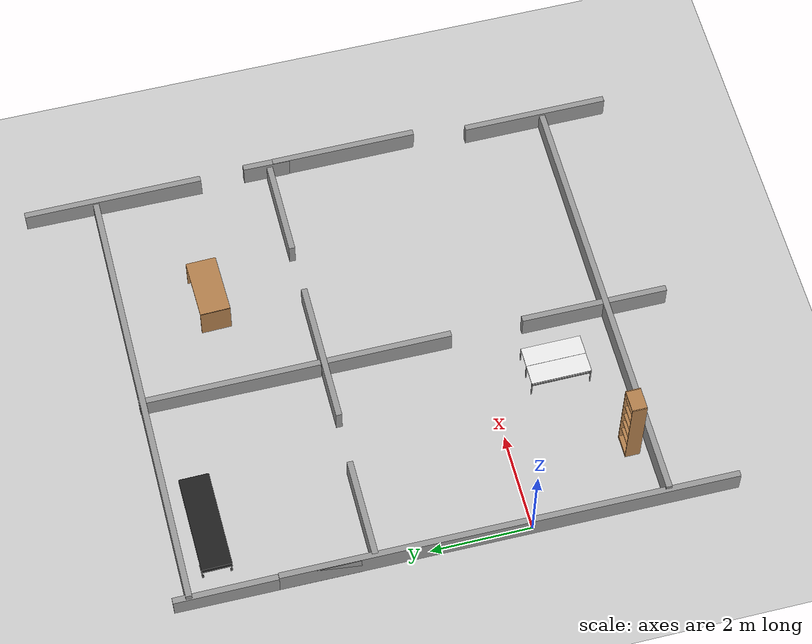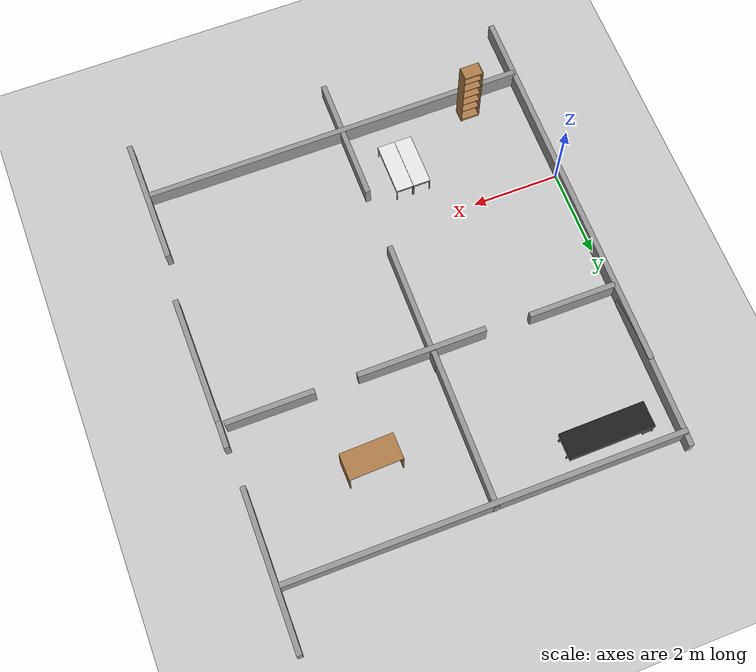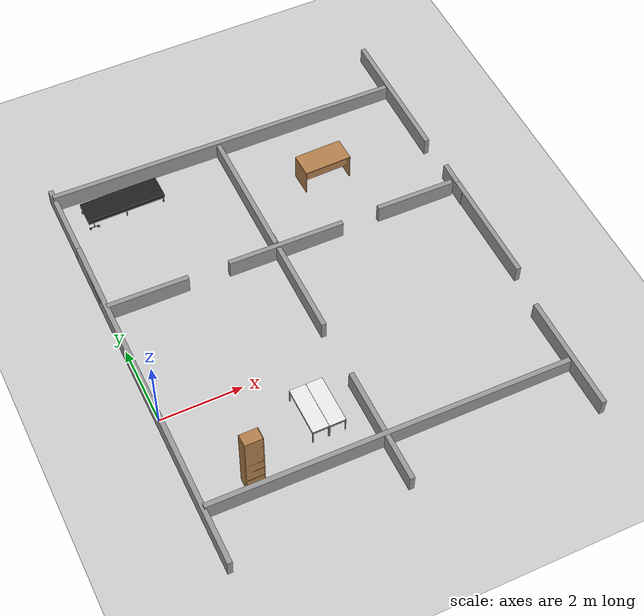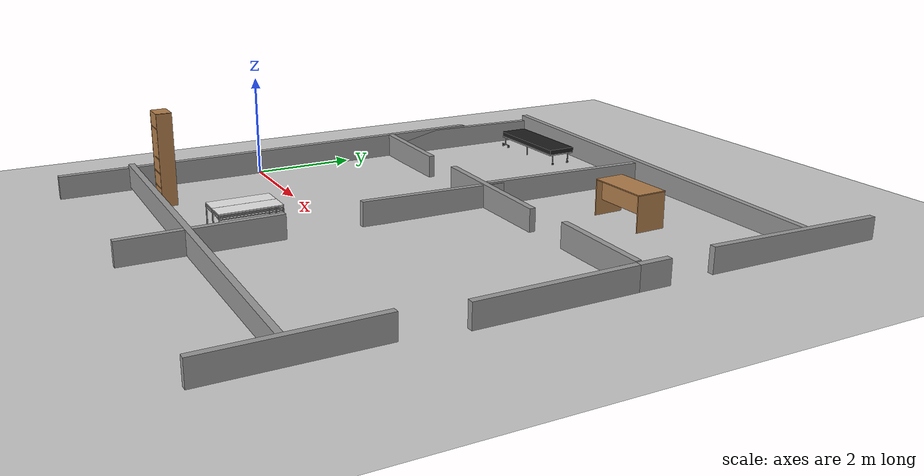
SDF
<sdf version="1.7">
 <world name="default">
  <light name="sun" type="directional">
   <pose>0 0 10 0 -0 0</pose>
   <diffuse>0.8 0.8 0.8 1</diffuse>
   <specular>0.2 0.2 0.2 1</specular>
   <attenuation>
    <range>1000</range>
    <constant>0.9</constant>
    <linear>0.01</linear>
    <quadratic>0.001</quadratic>
   </attenuation>
   <direction>-0.5 0.1 -0.9</direction>
   <spot><inner_angle>0</inner_angle><outer_angle>0</outer_angle><falloff>0</falloff></spot>
  </light>
  <model name="ground_plane">
   <static>1</static>
   <link name="link">
    <collision name="collision">
     <geometry><plane><normal>0 0 1</normal><size>100 100</size></plane></geometry>
     <surface><friction><ode><mu>100</mu><mu2>50</mu2></ode></friction></surface>
    </collision>
    <visual name="visual">
     <cast_shadows>0</cast_shadows>
     <geometry><plane><normal>0 0 1</normal><size>100 100</size></plane></geometry>
     <material>
      <script><uri>file://media/materials/scripts/gazebo.material</uri><name>Gazebo/Grey</name></script>
     </material>
    </visual>
   </link>
  </model>
  <gravity>0 0 -9.8</gravity>
  <physics type="ode">
   <max_step_size>0.001</max_step_size>
   <real_time_factor>1</real_time_factor>
   <real_time_update_rate>1000</real_time_update_rate>
  </physics>
  <scene><ambient>0.4 0.4 0.4 1</ambient><background>0.7 0.7 0.7 1</background><shadows>1</shadows></scene>
  <spherical_coordinates>
   <surface_model>EARTH_WGS84</surface_model>
   <latitude_deg>0</latitude_deg>
   <longitude_deg>0</longitude_deg>
   <elevation>0</elevation>
   <heading_deg>0</heading_deg>
  </spherical_coordinates>
  <model name="wall">
   <link name="link">
    <inertial>
     <mass>1</mass>
     <inertia>
      <ixx>0.166667</ixx>
      <ixy>0</ixy>
      <ixz>0</ixz>
      <iyy>0.166667</iyy>
      <iyz>0</iyz>
      <izz>0.166667</izz>
     </inertia>
    </inertial>
    <visual name="visual">
     <geometry><box><size>0.120264 8.94791 0.469751</size></box></geometry>
     <material>
      <script><name>Gazebo/Grey</name><uri>file://media/materials/scripts/gazebo.material</uri></script>
      <shader type="pixel"/>
     </material>
    </visual>
    <collision name="collision">
     <geometry><box><size>0.120264 8.94791 0.469751</size></box></geometry>
     <surface>
      <friction>
       <ode><mu>1</mu><mu2>1</mu2><fdir1>0 0 0</fdir1><slip1>0</slip1><slip2>0</slip2></ode>
       <torsional>
        <coefficient>1</coefficient>
        <patch_radius>0</patch_radius>
        <surface_radius>0</surface_radius>
        <use_patch_radius>1</use_patch_radius>
        <ode><slip>0</slip></ode>
       </torsional>
      </friction>
      <bounce><restitution_coefficient>0</restitution_coefficient><threshold>1e+06</threshold></bounce>
      <contact>
       <collide_without_contact>0</collide_without_contact>
       <collide_without_contact_bitmask>1</collide_without_contact_bitmask>
       <collide_bitmask>1</collide_bitmask>
       <ode>
        <soft_cfm>0</soft_cfm>
        <soft_erp>0.2</soft_erp>
        <kp>1e+13</kp>
        <kd>1</kd>
        <max_vel>0.01</max_vel>
        <min_depth>0</min_depth>
       </ode>
       <bullet>
        <split_impulse>1</split_impulse>
        <split_impulse_penetration_threshold>-0.01</split_impulse_penetration_threshold>
        <soft_cfm>0</soft_cfm>
        <soft_erp>0.2</soft_erp>
        <kp>1e+13</kp>
        <kd>1</kd>
       </bullet>
      </contact>
     </surface>
    </collision>
   </link>
   <static>1</static>
   <pose>-0.031703 0.436973 0.219564 0.003622 0.015237 -0.004097</pose>
  </model>
  <model name="wall_clone">
   <link name="link">
    <inertial>
     <mass>1</mass>
     <inertia>
      <ixx>0.166667</ixx>
      <ixy>0</ixy>
      <ixz>0</ixz>
      <iyy>0.166667</iyy>
      <iyz>0</iyz>
      <izz>0.166667</izz>
     </inertia>
    </inertial>
    <visual name="visual">
     <geometry><box><size>0.120264 8.94791 0.469751</size></box></geometry>
     <material>
      <script><name>Gazebo/Grey</name><uri>file://media/materials/scripts/gazebo.material</uri></script>
      <shader type="pixel"/>
     </material>
    </visual>
    <collision name="collision">
     <geometry><box><size>0.120264 8.94791 0.469751</size></box></geometry>
     <surface>
      <friction>
       <ode><mu>1</mu><mu2>1</mu2><fdir1>0 0 0</fdir1><slip1>0</slip1><slip2>0</slip2></ode>
       <torsional>
        <coefficient>1</coefficient>
        <patch_radius>0</patch_radius>
        <surface_radius>0</surface_radius>
        <use_patch_radius>1</use_patch_radius>
        <ode><slip>0</slip></ode>
       </torsional>
      </friction>
      <bounce><restitution_coefficient>0</restitution_coefficient><threshold>1e+06</threshold></bounce>
      <contact>
       <collide_without_contact>0</collide_without_contact>
       <collide_without_contact_bitmask>1</collide_without_contact_bitmask>
       <collide_bitmask>1</collide_bitmask>
       <ode>
        <soft_cfm>0</soft_cfm>
        <soft_erp>0.2</soft_erp>
        <kp>1e+13</kp>
        <kd>1</kd>
        <max_vel>0.01</max_vel>
        <min_depth>0</min_depth>
       </ode>
       <bullet>
        <split_impulse>1</split_impulse>
        <split_impulse_penetration_threshold>-0.01</split_impulse_penetration_threshold>
        <soft_cfm>0</soft_cfm>
        <soft_erp>0.2</soft_erp>
        <kp>1e+13</kp>
        <kd>1</kd>
       </bullet>
      </contact>
     </surface>
    </collision>
   </link>
   <static>1</static>
   <pose>4.4391 -2.6527 0.210699 -0.015237 0.003622 -1.57495</pose>
  </model>
  <model name="wall_clone_clone">
   <link name="link">
    <inertial>
     <mass>1</mass>
     <inertia>
      <ixx>0.166667</ixx>
      <ixy>0</ixy>
      <ixz>0</ixz>
      <iyy>0.166667</iyy>
      <iyz>0</iyz>
      <izz>0.166667</izz>
     </inertia>
    </inertial>
    <visual name="visual">
     <geometry><box><size>0.120264 8.94791 0.469751</size></box></geometry>
     <material>
      <script><name>Gazebo/Grey</name><uri>file://media/materials/scripts/gazebo.material</uri></script>
      <shader type="pixel"/>
     </material>
    </visual>
    <collision name="collision">
     <geometry><box><size>0.120264 8.94791 0.469751</size></box></geometry>
     <surface>
      <friction>
       <ode><mu>1</mu><mu2>1</mu2><fdir1>0 0 0</fdir1><slip1>0</slip1><slip2>0</slip2></ode>
       <torsional>
        <coefficient>1</coefficient>
        <patch_radius>0</patch_radius>
        <surface_radius>0</surface_radius>
        <use_patch_radius>1</use_patch_radius>
        <ode><slip>0</slip></ode>
       </torsional>
      </friction>
      <bounce><restitution_coefficient>0</restitution_coefficient><threshold>1e+06</threshold></bounce>
      <contact>
       <collide_without_contact>0</collide_without_contact>
       <collide_without_contact_bitmask>1</collide_without_contact_bitmask>
       <collide_bitmask>1</collide_bitmask>
       <ode>
        <soft_cfm>0</soft_cfm>
        <soft_erp>0.2</soft_erp>
        <kp>1e+13</kp>
        <kd>1</kd>
        <max_vel>0.01</max_vel>
        <min_depth>0</min_depth>
       </ode>
       <bullet>
        <split_impulse>1</split_impulse>
        <split_impulse_penetration_threshold>-0.01</split_impulse_penetration_threshold>
        <soft_cfm>0</soft_cfm>
        <soft_erp>0.2</soft_erp>
        <kp>1e+13</kp>
        <kd>1</kd>
       </bullet>
      </contact>
     </surface>
    </collision>
   </link>
   <static>1</static>
   <pose>4.44005 6.59473 0.212068 -0.015237 0.003622 -1.57495</pose>
  </model>
  <model name="wall_3m">
   <link name="link">
    <inertial>
     <mass>0.327712</mass>
     <inertia>
      <ixx>0.240849</ixx>
      <ixy>0</ixy>
      <ixz>0</ixz>
      <iyy>0.00642123</iyy>
      <iyz>0</iyz>
      <izz>0.235218</izz>
     </inertia>
    </inertial>
    <visual name="visual">
     <geometry><box><size>0.120264 2.93234 0.469751</size></box></geometry>
     <material>
      <script><name>Gazebo/Grey</name><uri>file://media/materials/scripts/gazebo.material</uri></script>
      <shader type="pixel"/>
     </material>
    </visual>
    <collision name="collision">
     <geometry><box><size>0.120264 2.93234 0.469751</size></box></geometry>
     <surface>
      <friction>
       <ode><mu>1</mu><mu2>1</mu2><fdir1>0 0 0</fdir1><slip1>0</slip1><slip2>0</slip2></ode>
       <torsional>
        <coefficient>1</coefficient>
        <patch_radius>0</patch_radius>
        <surface_radius>0</surface_radius>
        <use_patch_radius>1</use_patch_radius>
        <ode><slip>0</slip></ode>
       </torsional>
      </friction>
      <bounce><restitution_coefficient>0</restitution_coefficient><threshold>1e+06</threshold></bounce>
      <contact>
       <collide_without_contact>0</collide_without_contact>
       <collide_without_contact_bitmask>1</collide_without_contact_bitmask>
       <collide_bitmask>1</collide_bitmask>
       <ode>
        <soft_cfm>0</soft_cfm>
        <soft_erp>0.2</soft_erp>
        <kp>1e+13</kp>
        <kd>1</kd>
        <max_vel>0.01</max_vel>
        <min_depth>0</min_depth>
       </ode>
       <bullet>
        <split_impulse>1</split_impulse>
        <split_impulse_penetration_threshold>-0.01</split_impulse_penetration_threshold>
        <soft_cfm>0</soft_cfm>
        <soft_erp>0.2</soft_erp>
        <kp>1e+13</kp>
        <kd>1</kd>
       </bullet>
      </contact>
     </surface>
    </collision>
   </link>
   <static>1</static>
   <pose>4.46881 3.01267 0.21252 -0.015237 0.003622 -1.57495</pose>
  </model>
  <model name="wall_3m_clone">
   <link name="link">
    <inertial>
     <mass>0.327712</mass>
     <inertia>
      <ixx>0.240849</ixx>
      <ixy>0</ixy>
      <ixz>0</ixz>
      <iyy>0.00642123</iyy>
      <iyz>0</iyz>
      <izz>0.235218</izz>
     </inertia>
    </inertial>
    <visual name="visual">
     <geometry><box><size>0.120264 2.93234 0.469751</size></box></geometry>
     <material>
      <script><name>Gazebo/Grey</name><uri>file://media/materials/scripts/gazebo.material</uri></script>
      <shader type="pixel"/>
     </material>
    </visual>
    <collision name="collision">
     <geometry><box><size>0.120264 2.93234 0.469751</size></box></geometry>
     <surface>
      <friction>
       <ode><mu>1</mu><mu2>1</mu2><fdir1>0 0 0</fdir1><slip1>0</slip1><slip2>0</slip2></ode>
       <torsional>
        <coefficient>1</coefficient>
        <patch_radius>0</patch_radius>
        <surface_radius>0</surface_radius>
        <use_patch_radius>1</use_patch_radius>
        <ode><slip>0</slip></ode>
       </torsional>
      </friction>
      <bounce><restitution_coefficient>0</restitution_coefficient><threshold>1e+06</threshold></bounce>
      <contact>
       <collide_without_contact>0</collide_without_contact>
       <collide_without_contact_bitmask>1</collide_without_contact_bitmask>
       <collide_bitmask>1</collide_bitmask>
       <ode>
        <soft_cfm>0</soft_cfm>
        <soft_erp>0.2</soft_erp>
        <kp>1e+13</kp>
        <kd>1</kd>
        <max_vel>0.01</max_vel>
        <min_depth>0</min_depth>
       </ode>
       <bullet>
        <split_impulse>1</split_impulse>
        <split_impulse_penetration_threshold>-0.01</split_impulse_penetration_threshold>
        <soft_cfm>0</soft_cfm>
        <soft_erp>0.2</soft_erp>
        <kp>1e+13</kp>
        <kd>1</kd>
       </bullet>
      </contact>
     </surface>
    </collision>
   </link>
   <static>1</static>
   <pose>4.2118 -2.42123 0.212594 0.00367 0.015225 -0.000955</pose>
  </model>
  <model name="wall_3m_clone_0">
   <link name="link">
    <inertial>
     <mass>0.327712</mass>
     <inertia>
      <ixx>0.240849</ixx>
      <ixy>0</ixy>
      <ixz>0</ixz>
      <iyy>0.00642123</iyy>
      <iyz>0</iyz>
      <izz>0.235218</izz>
     </inertia>
    </inertial>
    <visual name="visual">
     <geometry><box><size>0.120264 2.93234 0.469751</size></box></geometry>
     <material>
      <script><name>Gazebo/Grey</name><uri>file://media/materials/scripts/gazebo.material</uri></script>
      <shader type="pixel"/>
     </material>
    </visual>
    <collision name="collision">
     <geometry><box><size>0.120264 2.93234 0.469751</size></box></geometry>
     <surface>
      <friction>
       <ode><mu>1</mu><mu2>1</mu2><fdir1>0 0 0</fdir1><slip1>0</slip1><slip2>0</slip2></ode>
       <torsional>
        <coefficient>1</coefficient>
        <patch_radius>0</patch_radius>
        <surface_radius>0</surface_radius>
        <use_patch_radius>1</use_patch_radius>
        <ode><slip>0</slip></ode>
       </torsional>
      </friction>
      <bounce><restitution_coefficient>0</restitution_coefficient><threshold>1e+06</threshold></bounce>
      <contact>
       <collide_without_contact>0</collide_without_contact>
       <collide_without_contact_bitmask>1</collide_without_contact_bitmask>
       <collide_bitmask>1</collide_bitmask>
       <ode>
        <soft_cfm>0</soft_cfm>
        <soft_erp>0.2</soft_erp>
        <kp>1e+13</kp>
        <kd>1</kd>
        <max_vel>0.01</max_vel>
        <min_depth>0</min_depth>
       </ode>
       <bullet>
        <split_impulse>1</split_impulse>
        <split_impulse_penetration_threshold>-0.01</split_impulse_penetration_threshold>
        <soft_cfm>0</soft_cfm>
        <soft_erp>0.2</soft_erp>
        <kp>1e+13</kp>
        <kd>1</kd>
       </bullet>
      </contact>
     </surface>
    </collision>
   </link>
   <static>1</static>
   <pose>4.2456 1.93622 0.204163 -0.015237 0.003622 -0.006735</pose>
  </model>
  <model name="wall_3m_clone_0_clone">
   <link name="link">
    <inertial>
     <mass>0.327712</mass>
     <inertia>
      <ixx>0.240849</ixx>
      <ixy>0</ixy>
      <ixz>0</ixz>
      <iyy>0.00642123</iyy>
      <iyz>0</iyz>
      <izz>0.235218</izz>
     </inertia>
    </inertial>
    <visual name="visual">
     <geometry><box><size>0.120264 3.58461 0.469751</size></box></geometry>
     <material>
      <script><name>Gazebo/Grey</name><uri>file://media/materials/scripts/gazebo.material</uri></script>
      <shader type="pixel"/>
     </material>
    </visual>
    <collision name="collision">
     <geometry><box><size>0.120264 3.58461 0.469751</size></box></geometry>
     <surface>
      <friction>
       <ode><mu>1</mu><mu2>1</mu2><fdir1>0 0 0</fdir1><slip1>0</slip1><slip2>0</slip2></ode>
       <torsional>
        <coefficient>1</coefficient>
        <patch_radius>0</patch_radius>
        <surface_radius>0</surface_radius>
        <use_patch_radius>1</use_patch_radius>
        <ode><slip>0</slip></ode>
       </torsional>
      </friction>
      <bounce><restitution_coefficient>0</restitution_coefficient><threshold>1e+06</threshold></bounce>
      <contact>
       <collide_without_contact>0</collide_without_contact>
       <collide_without_contact_bitmask>1</collide_without_contact_bitmask>
       <collide_bitmask>1</collide_bitmask>
       <ode>
        <soft_cfm>0</soft_cfm>
        <soft_erp>0.2</soft_erp>
        <kp>1e+13</kp>
        <kd>1</kd>
        <max_vel>0.01</max_vel>
        <min_depth>0</min_depth>
       </ode>
       <bullet>
        <split_impulse>1</split_impulse>
        <split_impulse_penetration_threshold>-0.01</split_impulse_penetration_threshold>
        <soft_cfm>0</soft_cfm>
        <soft_erp>0.2</soft_erp>
        <kp>1e+13</kp>
        <kd>1</kd>
       </bullet>
      </contact>
     </surface>
    </collision>
   </link>
   <static>1</static>
   <pose>4.24848 4.87586 0.189399 -0.015237 0.003622 -0.006735</pose>
  </model>
  <model name="wall_2m">
   <link name="link">
    <inertial>
     <mass>0.223772</mass>
     <inertia>
      <ixx>0.0788765</ixx>
      <ixy>0</ixy>
      <ixz>0</ixz>
      <iyy>0.00438461</iyy>
      <iyz>0</iyz>
      <izz>0.0750313</izz>
     </inertia>
    </inertial>
    <pose>0.058217 -0.377225 -0.005198 0 -0 0</pose>
    <visual name="visual">
     <geometry><box><size>0.120264 2.00229 0.469751</size></box></geometry>
     <material>
      <script><name>Gazebo/Grey</name><uri>file://media/materials/scripts/gazebo.material</uri></script>
      <shader type="pixel"/>
     </material>
    </visual>
    <collision name="collision">
     <geometry><box><size>0.120264 2.00229 0.469751</size></box></geometry>
     <surface>
      <friction>
       <ode><mu>1</mu><mu2>1</mu2><fdir1>0 0 0</fdir1><slip1>0</slip1><slip2>0</slip2></ode>
       <torsional>
        <coefficient>1</coefficient>
        <patch_radius>0</patch_radius>
        <surface_radius>0</surface_radius>
        <use_patch_radius>1</use_patch_radius>
        <ode><slip>0</slip></ode>
       </torsional>
      </friction>
      <bounce><restitution_coefficient>0</restitution_coefficient><threshold>1e+06</threshold></bounce>
      <contact>
       <collide_without_contact>0</collide_without_contact>
       <collide_without_contact_bitmask>1</collide_without_contact_bitmask>
       <collide_bitmask>1</collide_bitmask>
       <ode>
        <soft_cfm>0</soft_cfm>
        <soft_erp>0.2</soft_erp>
        <kp>1e+13</kp>
        <kd>1</kd>
        <max_vel>0.01</max_vel>
        <min_depth>0</min_depth>
       </ode>
       <bullet>
        <split_impulse>1</split_impulse>
        <split_impulse_penetration_threshold>-0.01</split_impulse_penetration_threshold>
        <soft_cfm>0</soft_cfm>
        <soft_erp>0.2</soft_erp>
        <kp>1e+13</kp>
        <kd>1</kd>
       </bullet>
      </contact>
     </surface>
    </collision>
   </link>
   <static>1</static>
   <pose>1.37337 3.11952 0.214254 -0.015237 0.003622 -1.57495</pose>
  </model>
  <model name="wall_2m_clone">
   <link name="link">
    <inertial>
     <mass>0.223772</mass>
     <inertia>
      <ixx>0.0788765</ixx>
      <ixy>0</ixy>
      <ixz>0</ixz>
      <iyy>0.00438461</iyy>
      <iyz>0</iyz>
      <izz>0.0750313</izz>
     </inertia>
    </inertial>
    <pose>0.058217 -0.377225 -0.005198 0 -0 0</pose>
    <visual name="visual">
     <geometry><box><size>0.120264 2.00229 0.469751</size></box></geometry>
     <material>
      <script><name>Gazebo/Grey</name><uri>file://media/materials/scripts/gazebo.material</uri></script>
      <shader type="pixel"/>
     </material>
    </visual>
    <collision name="collision">
     <geometry><box><size>0.120264 2.00229 0.469751</size></box></geometry>
     <surface>
      <friction>
       <ode><mu>1</mu><mu2>1</mu2><fdir1>0 0 0</fdir1><slip1>0</slip1><slip2>0</slip2></ode>
       <torsional>
        <coefficient>1</coefficient>
        <patch_radius>0</patch_radius>
        <surface_radius>0</surface_radius>
        <use_patch_radius>1</use_patch_radius>
        <ode><slip>0</slip></ode>
       </torsional>
      </friction>
      <bounce><restitution_coefficient>0</restitution_coefficient><threshold>1e+06</threshold></bounce>
      <contact>
       <collide_without_contact>0</collide_without_contact>
       <collide_without_contact_bitmask>1</collide_without_contact_bitmask>
       <collide_bitmask>1</collide_bitmask>
       <ode>
        <soft_cfm>0</soft_cfm>
        <soft_erp>0.2</soft_erp>
        <kp>1e+13</kp>
        <kd>1</kd>
        <max_vel>0.01</max_vel>
        <min_depth>0</min_depth>
       </ode>
       <bullet>
        <split_impulse>1</split_impulse>
        <split_impulse_penetration_threshold>-0.01</split_impulse_penetration_threshold>
        <soft_cfm>0</soft_cfm>
        <soft_erp>0.2</soft_erp>
        <kp>1e+13</kp>
        <kd>1</kd>
       </bullet>
      </contact>
     </surface>
    </collision>
   </link>
   <static>1</static>
   <pose>8.26649 3.07325 0.211916 -0.015237 0.003622 -1.57495</pose>
  </model>
  <model name="wall_3m_clone_1">
   <link name="link">
    <inertial>
     <mass>0.327712</mass>
     <inertia>
      <ixx>0.240849</ixx>
      <ixy>0</ixy>
      <ixz>0</ixz>
      <iyy>0.00642123</iyy>
      <iyz>0</iyz>
      <izz>0.235218</izz>
     </inertia>
    </inertial>
    <visual name="visual">
     <geometry><box><size>0.120264 2.93234 0.469751</size></box></geometry>
     <material>
      <script><name>Gazebo/Grey</name><uri>file://media/materials/scripts/gazebo.material</uri></script>
      <shader type="pixel"/>
     </material>
    </visual>
    <collision name="collision">
     <geometry><box><size>0.120264 2.93234 0.469751</size></box></geometry>
     <surface>
      <friction>
       <ode><mu>1</mu><mu2>1</mu2><fdir1>0 0 0</fdir1><slip1>0</slip1><slip2>0</slip2></ode>
       <torsional>
        <coefficient>1</coefficient>
        <patch_radius>0</patch_radius>
        <surface_radius>0</surface_radius>
        <use_patch_radius>1</use_patch_radius>
        <ode><slip>0</slip></ode>
       </torsional>
      </friction>
      <bounce><restitution_coefficient>0</restitution_coefficient><threshold>1e+06</threshold></bounce>
      <contact>
       <collide_without_contact>0</collide_without_contact>
       <collide_without_contact_bitmask>1</collide_without_contact_bitmask>
       <collide_bitmask>1</collide_bitmask>
       <ode>
        <soft_cfm>0</soft_cfm>
        <soft_erp>0.2</soft_erp>
        <kp>1e+13</kp>
        <kd>1</kd>
        <max_vel>0.01</max_vel>
        <min_depth>0</min_depth>
       </ode>
       <bullet>
        <split_impulse>1</split_impulse>
        <split_impulse_penetration_threshold>-0.01</split_impulse_penetration_threshold>
        <soft_cfm>0</soft_cfm>
        <soft_erp>0.2</soft_erp>
        <kp>1e+13</kp>
        <kd>1</kd>
       </bullet>
      </contact>
     </surface>
    </collision>
   </link>
   <static>1</static>
   <pose>8.85891 -2.52434 0.196172 -0.003765 -0.015202 -3.13632</pose>
  </model>
  <model name="wall_3m_clone_1_clone">
   <link name="link">
    <inertial>
     <mass>0.327712</mass>
     <inertia>
      <ixx>0.240849</ixx>
      <ixy>0</ixy>
      <ixz>0</ixz>
      <iyy>0.00642123</iyy>
      <iyz>0</iyz>
      <izz>0.235218</izz>
     </inertia>
    </inertial>
    <visual name="visual">
     <geometry><box><size>0.120264 2.93234 0.469751</size></box></geometry>
     <material>
      <script><name>Gazebo/Grey</name><uri>file://media/materials/scripts/gazebo.material</uri></script>
      <shader type="pixel"/>
     </material>
    </visual>
    <collision name="collision">
     <geometry><box><size>0.120264 2.93234 0.469751</size></box></geometry>
     <surface>
      <friction>
       <ode><mu>1</mu><mu2>1</mu2><fdir1>0 0 0</fdir1><slip1>0</slip1><slip2>0</slip2></ode>
       <torsional>
        <coefficient>1</coefficient>
        <patch_radius>0</patch_radius>
        <surface_radius>0</surface_radius>
        <use_patch_radius>1</use_patch_radius>
        <ode><slip>0</slip></ode>
       </torsional>
      </friction>
      <bounce><restitution_coefficient>0</restitution_coefficient><threshold>1e+06</threshold></bounce>
      <contact>
       <collide_without_contact>0</collide_without_contact>
       <collide_without_contact_bitmask>1</collide_without_contact_bitmask>
       <collide_bitmask>1</collide_bitmask>
       <ode>
        <soft_cfm>0</soft_cfm>
        <soft_erp>0.2</soft_erp>
        <kp>1e+13</kp>
        <kd>1</kd>
        <max_vel>0.01</max_vel>
        <min_depth>0</min_depth>
       </ode>
       <bullet>
        <split_impulse>1</split_impulse>
        <split_impulse_penetration_threshold>-0.01</split_impulse_penetration_threshold>
        <soft_cfm>0</soft_cfm>
        <soft_erp>0.2</soft_erp>
        <kp>1e+13</kp>
        <kd>1</kd>
       </bullet>
      </contact>
     </surface>
    </collision>
   </link>
   <static>1</static>
   <pose>9.01173 1.46051 0.196172 -0.003765 -0.015202 -3.13632</pose>
  </model>
  <model name="wall_1">
   <link name="link">
    <inertial>
     <mass>0.104919</mass>
     <inertia>
      <ixx>0.00963536</ixx>
      <ixy>0</ixy>
      <ixz>0</ixz>
      <iyy>0.0020558</iyy>
      <iyz>0</iyz>
      <izz>0.00783247</izz>
     </inertia>
    </inertial>
    <pose>0.064305 -0.884421 -0.004848 0 -0 0</pose>
    <visual name="visual">
     <geometry><box><size>0.120264 0.93881 0.469751</size></box></geometry>
     <material>
      <script><name>Gazebo/Grey</name><uri>file://media/materials/scripts/gazebo.material</uri></script>
      <shader type="pixel"/>
     </material>
    </visual>
    <collision name="collision">
     <geometry><box><size>0.120264 0.93881 0.469751</size></box></geometry>
     <surface>
      <friction>
       <ode><mu>1</mu><mu2>1</mu2><fdir1>0 0 0</fdir1><slip1>0</slip1><slip2>0</slip2></ode>
       <torsional>
        <coefficient>1</coefficient>
        <patch_radius>0</patch_radius>
        <surface_radius>0</surface_radius>
        <use_patch_radius>1</use_patch_radius>
        <ode><slip>0</slip></ode>
       </torsional>
      </friction>
      <bounce><restitution_coefficient>0</restitution_coefficient><threshold>1e+06</threshold></bounce>
      <contact>
       <collide_without_contact>0</collide_without_contact>
       <collide_without_contact_bitmask>1</collide_without_contact_bitmask>
       <collide_bitmask>1</collide_bitmask>
       <ode>
        <soft_cfm>0</soft_cfm>
        <soft_erp>0.2</soft_erp>
        <kp>1e+13</kp>
        <kd>1</kd>
        <max_vel>0.01</max_vel>
        <min_depth>0</min_depth>
       </ode>
       <bullet>
        <split_impulse>1</split_impulse>
        <split_impulse_penetration_threshold>-0.01</split_impulse_penetration_threshold>
        <soft_cfm>0</soft_cfm>
        <soft_erp>0.2</soft_erp>
        <kp>1e+13</kp>
        <kd>1</kd>
       </bullet>
      </contact>
     </surface>
    </collision>
   </link>
   <static>1</static>
   <pose>8.94432 3.94613 0.209183 0.002875 0.015396 -0.007808</pose>
  </model>
  <model name="wall_3m_clone_0_clone_clone">
   <link name="link">
    <inertial>
     <mass>0.327712</mass>
     <inertia>
      <ixx>0.240849</ixx>
      <ixy>0</ixy>
      <ixz>0</ixz>
      <iyy>0.00642123</iyy>
      <iyz>0</iyz>
      <izz>0.235218</izz>
     </inertia>
    </inertial>
    <visual name="visual">
     <geometry><box><size>0.120264 3.5846 0.469751</size></box></geometry>
     <material>
      <script><name>Gazebo/Grey</name><uri>file://media/materials/scripts/gazebo.material</uri></script>
      <shader type="pixel"/>
     </material>
    </visual>
    <collision name="collision">
     <geometry><box><size>0.120264 3.5846 0.469751</size></box></geometry>
     <surface>
      <friction>
       <ode><mu>1</mu><mu2>1</mu2><fdir1>0 0 0</fdir1><slip1>0</slip1><slip2>0</slip2></ode>
       <torsional>
        <coefficient>1</coefficient>
        <patch_radius>0</patch_radius>
        <surface_radius>0</surface_radius>
        <use_patch_radius>1</use_patch_radius>
        <ode><slip>0</slip></ode>
       </torsional>
      </friction>
      <bounce><restitution_coefficient>0</restitution_coefficient><threshold>1e+06</threshold></bounce>
      <contact>
       <collide_without_contact>0</collide_without_contact>
       <collide_without_contact_bitmask>1</collide_without_contact_bitmask>
       <collide_bitmask>1</collide_bitmask>
       <ode>
        <soft_cfm>0</soft_cfm>
        <soft_erp>0.2</soft_erp>
        <kp>1e+13</kp>
        <kd>1</kd>
        <max_vel>0.01</max_vel>
        <min_depth>0</min_depth>
       </ode>
       <bullet>
        <split_impulse>1</split_impulse>
        <split_impulse_penetration_threshold>-0.01</split_impulse_penetration_threshold>
        <soft_cfm>0</soft_cfm>
        <soft_erp>0.2</soft_erp>
        <kp>1e+13</kp>
        <kd>1</kd>
       </bullet>
      </contact>
     </surface>
    </collision>
   </link>
   <static>1</static>
   <pose>-0.007603 5.12729 0.189399 -0.015237 0.003622 -0.006735</pose>
  </model>
  <model name="wall_3m_clone_0_clone_clone_0">
   <link name="link">
    <inertial>
     <mass>0.327712</mass>
     <inertia>
      <ixx>0.240849</ixx>
      <ixy>0</ixy>
      <ixz>0</ixz>
      <iyy>0.00642123</iyy>
      <iyz>0</iyz>
      <izz>0.235218</izz>
     </inertia>
    </inertial>
    <visual name="visual">
     <geometry><box><size>0.120264 3.58461 0.469751</size></box></geometry>
     <material>
      <script><name>Gazebo/Grey</name><uri>file://media/materials/scripts/gazebo.material</uri></script>
      <shader type="pixel"/>
     </material>
    </visual>
    <collision name="collision">
     <geometry><box><size>0.120264 3.58461 0.469751</size></box></geometry>
     <surface>
      <friction>
       <ode><mu>1</mu><mu2>1</mu2><fdir1>0 0 0</fdir1><slip1>0</slip1><slip2>0</slip2></ode>
       <torsional>
        <coefficient>1</coefficient>
        <patch_radius>0</patch_radius>
        <surface_radius>0</surface_radius>
        <use_patch_radius>1</use_patch_radius>
        <ode><slip>0</slip></ode>
       </torsional>
      </friction>
      <bounce><restitution_coefficient>0</restitution_coefficient><threshold>1e+06</threshold></bounce>
      <contact>
       <collide_without_contact>0</collide_without_contact>
       <collide_without_contact_bitmask>1</collide_without_contact_bitmask>
       <collide_bitmask>1</collide_bitmask>
       <ode>
        <soft_cfm>0</soft_cfm>
        <soft_erp>0.2</soft_erp>
        <kp>1e+13</kp>
        <kd>1</kd>
        <max_vel>0.01</max_vel>
        <min_depth>0</min_depth>
       </ode>
       <bullet>
        <split_impulse>1</split_impulse>
        <split_impulse_penetration_threshold>-0.01</split_impulse_penetration_threshold>
        <soft_cfm>0</soft_cfm>
        <soft_erp>0.2</soft_erp>
        <kp>1e+13</kp>
        <kd>1</kd>
       </bullet>
      </contact>
     </surface>
    </collision>
   </link>
   <static>1</static>
   <pose>8.97179 6.21192 0.189399 -0.015237 0.003622 -0.006735</pose>
  </model>
  <model name="office_desk">
   <link name="link">
    <inertial>
     <mass>10</mass>
     <inertia><ixx>1</ixx><ixy>0</ixy><ixz>0</ixz><iyy>1</iyy><iyz>0</iyz><izz>1</izz></inertia>
    </inertial>
    <visual name="top_board">
     <pose>-0.3 0.6 0.69 0 -0 0</pose>
     <geometry><box><size>0.6 1.2 0.02</size></box></geometry>
     <material>
      <script>
       <uri>model://base_materials/wood/scripts/wood.material</uri>
       <name>base_materials/dark_wood</name>
      </script>
     </material>
    </visual>
    <collision name="collision_top_board">
     <pose>-0.3 0.6 0.69 0 -0 0</pose>
     <geometry><box><size>0.6 1.2 0.02</size></box></geometry>
    </collision>
    <visual name="left_board">
     <pose>-0.3 0.01 0.34 0 -0 0</pose>
     <geometry><box><size>0.6 0.02 0.68</size></box></geometry>
     <material>
      <script>
       <uri>model://base_materials/wood/scripts/wood.material</uri>
       <name>base_materials/dark_wood</name>
      </script>
     </material>
    </visual>
    <collision name="collision_left_board">
     <pose>-0.3 0.01 0.34 0 -0 0</pose>
     <geometry><box><size>0.6 0.02 0.68</size></box></geometry>
    </collision>
    <visual name="right_board">
     <pose>-0.3 1.19 0.34 0 -0 0</pose>
     <geometry><box><size>0.6 0.02 0.68</size></box></geometry>
     <material>
      <script>
       <uri>model://base_materials/wood/scripts/wood.material</uri>
       <name>base_materials/dark_wood</name>
      </script>
     </material>
    </visual>
    <collision name="collision_right_board">
     <pose>-0.3 1.19 0.34 0 -0 0</pose>
     <geometry><box><size>0.6 0.02 0.68</size></box></geometry>
    </collision>
    <visual name="center_board">
     <pose>-0.14 0.6 0.49 0 -0 0</pose>
     <geometry><box><size>0.02 1.16 0.4</size></box></geometry>
     <material>
      <script>
       <uri>model://base_materials/wood/scripts/wood.material</uri>
       <name>base_materials/dark_wood</name>
      </script>
     </material>
    </visual>
    <collision name="ollision_center_board">
     <pose>-0.14 0.6 0.49 0 -0 0</pose>
     <geometry><box><size>0.02 1.16 0.4</size></box></geometry>
    </collision>
    <velocity_decay><linear>0</linear><angular>0</angular></velocity_decay>
   </link>
   <static>1</static>
   <pose>5.7074 4.52861 0 0 0 -1.54655</pose>
  </model>
  <model name="bed">
   <link name="link">
    <inertial>
     <mass>10</mass>
     <inertia><ixx>1</ixx><ixy>0</ixy><ixz>0</ixz><iyy>1</iyy><iyz>0</iyz><izz>1</izz></inertia>
    </inertial>
    <visual name="cushion">
     <pose>-0.295 -0.975 0.2875 0 -0 0</pose>
     <geometry><box><size>0.59 1.95 0.095</size></box></geometry>
     <material>
      <script>
       <uri>model://base_materials/cloth/scripts</uri>
       <uri>model://base_materials/cloth/textures</uri>
       <name>cloth/black</name>
      </script>
     </material>
    </visual>
    <collision name="collision_cushion">
     <pose>-0.295 -0.975 0.2875 0 -0 0</pose>
     <geometry><box><size>0.59 1.95 0.095</size></box></geometry>
    </collision>
    <visual name="top_frame">
     <pose>-0.295 -0.975 0.225 0 -0 0</pose>
     <geometry><box><size>0.59 1.95 0.03</size></box></geometry>
     <material>
      <script><uri>model://base_materials/color/scripts</uri><name>hsr_color/grey</name></script>
     </material>
    </visual>
    <collision name="collision_top_frame">
     <pose>-0.295 -0.975 0.225 0 -0 0</pose>
     <geometry><box><size>0.59 1.95 0.03</size></box></geometry>
    </collision>
    <visual name="right_front_pole">
     <pose>-0.075 -0.0125 0.125 0 -0 0</pose>
     <geometry><cylinder><radius>0.0125</radius><length>0.17</length></cylinder></geometry>
     <material>
      <script><uri>model://base_materials/color/scripts</uri><name>hsr_color/grey</name></script>
     </material>
    </visual>
    <collision name="collision_right_front_pole">
     <pose>-0.075 -0.0125 0.125 0 -0 0</pose>
     <geometry><cylinder><radius>0.0125</radius><length>0.17</length></cylinder></geometry>
    </collision>
    <visual name="right_front_caster">
     <pose>-0.075 -0.0125 0.02 0 1.57 0</pose>
     <geometry><cylinder><radius>0.02</radius><length>0.04</length></cylinder></geometry>
     <material><script><name>Gazebo/Black</name><uri>__default__</uri></script></material>
    </visual>
    <collision name="collision_right_front_caster">
     <pose>-0.075 -0.0125 0.02 0 1.57 0</pose>
     <geometry><cylinder><radius>0.02</radius><length>0.04</length></cylinder></geometry>
    </collision>
    <visual name="right_back_pole">
     <pose>-0.46 -0.0125 0.125 0 -0 0</pose>
     <geometry><cylinder><radius>0.0125</radius><length>0.17</length></cylinder></geometry>
     <material>
      <script><uri>model://base_materials/color/scripts</uri><name>hsr_color/grey</name></script>
     </material>
    </visual>
    <collision name="collision_right_back_pole">
     <pose>-0.46 -0.0125 0.125 0 -0 0</pose>
     <geometry><cylinder><radius>0.0125</radius><length>0.17</length></cylinder></geometry>
    </collision>
    <visual name="right_back_caster">
     <pose>-0.46 -0.0125 0.02 0 1.57 0</pose>
     <geometry><cylinder><radius>0.02</radius><length>0.04</length></cylinder></geometry>
     <material><script><name>Gazebo/Black</name><uri>__default__</uri></script></material>
    </visual>
    <collision name="collision_back_front_caster">
     <pose>-0.46 -0.0125 0.02 0 1.57 0</pose>
     <geometry><cylinder><radius>0.02</radius><length>0.04</length></cylinder></geometry>
    </collision>
    <visual name="center_front_pole">
     <pose>-0.0425 -0.975 0.105 0 -0 0</pose>
     <geometry><cylinder><radius>0.0125</radius><length>0.21</length></cylinder></geometry>
     <material>
      <script><uri>model://base_materials/color/scripts</uri><name>hsr_color/grey</name></script>
     </material>
    </visual>
    <collision name="collision_center_front_pole">
     <pose>-0.0425 -0.975 0.105 0 -0 0</pose>
     <geometry><cylinder><radius>0.0125</radius><length>0.17</length></cylinder></geometry>
    </collision>
    <visual name="center_back_pole">
     <pose>-0.5475 -0.975 0.105 0 -0 0</pose>
     <geometry><cylinder><radius>0.0125</radius><length>0.21</length></cylinder></geometry>
     <material>
      <script><uri>model://base_materials/color/scripts</uri><name>hsr_color/grey</name></script>
     </material>
    </visual>
    <collision name="collision_center_back_pole">
     <pose>-0.5475 -0.975 0.105 0 -0 0</pose>
     <geometry><cylinder><radius>0.0125</radius><length>0.17</length></cylinder></geometry>
    </collision>
    <visual name="left_front_horizon_pole">
     <pose>-0.01 -1.825 0.06 1.57 -0 0</pose>
     <geometry><cylinder><radius>0.01</radius><length>0.25</length></cylinder></geometry>
     <material>
      <script><uri>model://base_materials/color/scripts</uri><name>hsr_color/grey</name></script>
     </material>
    </visual>
    <collision name="collision_left_front_horizon_pole">
     <pose>-0.01 -1.825 0.06 1.57 -0 0</pose>
     <geometry><cylinder><radius>0.01</radius><length>0.25</length></cylinder></geometry>
    </collision>
    <visual name="left_front_vertical_pole">
     <pose>-0.01 -1.825 0.14 0 -0 0</pose>
     <geometry><cylinder><radius>0.01</radius><length>0.14</length></cylinder></geometry>
     <material>
      <script><uri>model://base_materials/color/scripts</uri><name>hsr_color/grey</name></script>
     </material>
    </visual>
    <collision name="collision_left_front_vertical_pole">
     <pose>-0.01 -1.825 0.14 0 -0 0</pose>
     <geometry><cylinder><radius>0.01</radius><length>0.14</length></cylinder></geometry>
    </collision>
    <visual name="left_front_caster_r">
     <pose>-0.02 -1.725 0.025 0 1.57 0</pose>
     <geometry><cylinder><radius>0.025</radius><length>0.04</length></cylinder></geometry>
     <material><script><name>Gazebo/Black</name><uri>__default__</uri></script></material>
    </visual>
    <collision name="collision_left_front_caster_r">
     <pose>-0.02 -1.725 0.025 0 1.57 0</pose>
     <geometry><cylinder><radius>0.025</radius><length>0.04</length></cylinder></geometry>
    </collision>
    <visual name="left_front_caster_l">
     <pose>-0.02 -1.925 0.025 0 1.57 0</pose>
     <geometry><cylinder><radius>0.025</radius><length>0.04</length></cylinder></geometry>
     <material><script><name>Gazebo/Black</name><uri>__default__</uri></script></material>
    </visual>
    <collision name="collision_left_front_caster_l">
     <pose>-0.02 -1.925 0.025 0 1.57 0</pose>
     <geometry><cylinder><radius>0.025</radius><length>0.04</length></cylinder></geometry>
    </collision>
    <visual name="left_back_horizon_pole">
     <pose>-0.58 -1.825 0.06 1.57 -0 0</pose>
     <geometry><cylinder><radius>0.01</radius><length>0.25</length></cylinder></geometry>
     <material>
      <script><uri>model://base_materials/color/scripts</uri><name>hsr_color/grey</name></script>
     </material>
    </visual>
    <collision name="collision_left_back_horizon_pole">
     <pose>-0.58 -1.825 0.06 1.57 -0 0</pose>
     <geometry><cylinder><radius>0.01</radius><length>0.25</length></cylinder></geometry>
    </collision>
    <visual name="left_back_vertical_pole">
     <pose>-0.58 -1.825 0.14 0 -0 0</pose>
     <geometry><cylinder><radius>0.01</radius><length>0.14</length></cylinder></geometry>
     <material>
      <script><uri>model://base_materials/color/scripts</uri><name>hsr_color/grey</name></script>
     </material>
    </visual>
    <collision name="collision_left_back_vertical_pole">
     <pose>-0.58 -1.825 0.14 0 -0 0</pose>
     <geometry><cylinder><radius>0.01</radius><length>0.14</length></cylinder></geometry>
    </collision>
    <visual name="left_back_caster_r">
     <pose>-0.57 -1.725 0.025 0 1.57 0</pose>
     <geometry><cylinder><radius>0.025</radius><length>0.04</length></cylinder></geometry>
     <material><script><name>Gazebo/Black</name><uri>__default__</uri></script></material>
    </visual>
    <collision name="collision_left_back_caster_r">
     <pose>-0.57 -1.725 0.025 0 1.57 0</pose>
     <geometry><cylinder><radius>0.025</radius><length>0.04</length></cylinder></geometry>
    </collision>
    <visual name="left_back_caster_l">
     <pose>-0.57 -1.925 0.025 0 1.57 0</pose>
     <geometry><cylinder><radius>0.025</radius><length>0.04</length></cylinder></geometry>
     <material><script><name>Gazebo/Black</name><uri>__default__</uri></script></material>
    </visual>
    <collision name="collision_left_back_caster_l">
     <pose>-0.57 -1.925 0.025 0 1.57 0</pose>
     <geometry><cylinder><radius>0.025</radius><length>0.04</length></cylinder></geometry>
    </collision>
    <velocity_decay><linear>0</linear><angular>0</angular></velocity_decay>
   </link>
   <static>1</static>
   <pose>2.4649 5.69361 0 0 0 -1.56137</pose>
  </model>
  <model name="high_shelf">
   <link name="link">
    <inertial>
     <mass>5</mass>
     <inertia><ixx>1</ixx><ixy>0</ixy><ixz>0</ixz><iyy>1</iyy><iyz>0</iyz><izz>1</izz></inertia>
    </inertial>
    <visual name="left_board">
     <pose>-0.1475 0.009 0.898 0 -0 0</pose>
     <geometry><box><size>0.295 0.018 1.796</size></box></geometry>
     <material>
      <script>
       <uri>model://base_materials/wood/scripts</uri>
       <uri>model://base_materials/wood/textures</uri>
       <name>base_materials/light_wood</name>
      </script>
     </material>
    </visual>
    <collision name="collision_left_board">
     <pose>-0.1475 0.009 0.898 0 -0 0</pose>
     <geometry><box><size>0.295 0.018 1.796</size></box></geometry>
    </collision>
    <visual name="right_board">
     <pose>-0.1475 0.441 0.898 0 -0 0</pose>
     <geometry><box><size>0.295 0.018 1.796</size></box></geometry>
     <material>
      <script>
       <uri>model://base_materials/wood/scripts</uri>
       <uri>model://base_materials/wood/textures</uri>
       <name>base_materials/light_wood</name>
      </script>
     </material>
    </visual>
    <collision name="collision_right_board">
     <pose>-0.1475 0.441 0.898 0 -0 0</pose>
     <geometry><box><size>0.295 0.018 1.796</size></box></geometry>
    </collision>
    <visual name="top_board">
     <pose>-0.1475 0.225 1.7825 0 -0 0</pose>
     <geometry><box><size>0.295 0.414 0.035</size></box></geometry>
     <material>
      <script>
       <uri>model://base_materials/wood/scripts</uri>
       <uri>model://base_materials/wood/textures</uri>
       <name>base_materials/light_wood</name>
      </script>
     </material>
    </visual>
    <collision name="collision_top_board">
     <pose>-0.1475 0.225 1.7825 0 -0 0</pose>
     <geometry><box><size>0.295 0.414 0.035</size></box></geometry>
    </collision>
    <visual name="1st_shelf">
     <pose>-0.162 0.225 1.51 0 -0 0</pose>
     <geometry><box><size>0.266 0.414 0.018</size></box></geometry>
     <material>
      <script>
       <uri>model://base_materials/wood/scripts</uri>
       <uri>model://base_materials/wood/textures</uri>
       <name>base_materials/light_wood</name>
      </script>
     </material>
    </visual>
    <collision name="collision_1st_shelf">
     <pose>-0.162 0.225 1.51 0 -0 0</pose>
     <geometry><box><size>0.266 0.414 0.018</size></box></geometry>
    </collision>
    <visual name="2nd_shelf">
     <pose>-0.162 0.225 1.22 0 -0 0</pose>
     <geometry><box><size>0.266 0.414 0.018</size></box></geometry>
     <material>
      <script>
       <uri>model://base_materials/wood/scripts</uri>
       <uri>model://base_materials/wood/textures</uri>
       <name>base_materials/light_wood</name>
      </script>
     </material>
    </visual>
    <collision name="collision_2nd_shelf">
     <pose>-0.162 0.225 1.22 0 -0 0</pose>
     <geometry><box><size>0.266 0.414 0.018</size></box></geometry>
    </collision>
    <visual name="3rd_shelf">
     <pose>-0.162 0.225 0.93 0 -0 0</pose>
     <geometry><box><size>0.266 0.414 0.018</size></box></geometry>
     <material>
      <script>
       <uri>model://base_materials/wood/scripts</uri>
       <uri>model://base_materials/wood/textures</uri>
       <name>base_materials/light_wood</name>
      </script>
     </material>
    </visual>
    <collision name="collision_3rd_shelf">
     <pose>-0.162 0.225 0.93 0 -0 0</pose>
     <geometry><box><size>0.266 0.414 0.018</size></box></geometry>
    </collision>
    <visual name="4th_shelf">
     <pose>-0.162 0.225 0.65 0 -0 0</pose>
     <geometry><box><size>0.266 0.414 0.018</size></box></geometry>
     <material>
      <script>
       <uri>model://base_materials/wood/scripts</uri>
       <uri>model://base_materials/wood/textures</uri>
       <name>base_materials/light_wood</name>
      </script>
     </material>
    </visual>
    <collision name="collision_4th_shelf">
     <pose>-0.162 0.225 0.65 0 -0 0</pose>
     <geometry><box><size>0.266 0.414 0.018</size></box></geometry>
    </collision>
    <visual name="5th_shelf">
     <pose>-0.162 0.225 0.36 0 -0 0</pose>
     <geometry><box><size>0.266 0.414 0.018</size></box></geometry>
     <material>
      <script>
       <uri>model://base_materials/wood/scripts</uri>
       <uri>model://base_materials/wood/textures</uri>
       <name>base_materials/light_wood</name>
      </script>
     </material>
    </visual>
    <collision name="collision_5th_shelf">
     <pose>-0.162 0.225 0.36 0 -0 0</pose>
     <geometry><box><size>0.266 0.414 0.018</size></box></geometry>
    </collision>
    <visual name="bottom_board">
     <pose>-0.1475 0.225 0.035 0 -0 0</pose>
     <geometry><box><size>0.295 0.414 0.07</size></box></geometry>
     <material>
      <script>
       <uri>model://base_materials/wood/scripts</uri>
       <uri>model://base_materials/wood/textures</uri>
       <name>base_materials/light_wood</name>
      </script>
     </material>
    </visual>
    <collision name="collision_bottom_board">
     <pose>-0.1475 0.225 0.035 0 -0 0</pose>
     <geometry><box><size>0.295 0.414 0.07</size></box></geometry>
    </collision>
    <visual name="back_board">
     <pose>-0.286 0.225 0.898 0 -0 0</pose>
     <geometry><box><size>0.018 0.414 1.796</size></box></geometry>
     <material>
      <script>
       <uri>model://base_materials/wood/scripts</uri>
       <uri>model://base_materials/wood/textures</uri>
       <name>base_materials/light_wood</name>
      </script>
     </material>
    </visual>
    <collision name="collision_back_board">
     <pose>-0.286 0.225 0.898 0 -0 0</pose>
     <geometry><box><size>0.018 0.414 1.796</size></box></geometry>
    </collision>
    <velocity_decay><linear>0</linear><angular>0</angular></velocity_decay>
   </link>
   <static>1</static>
   <pose>1.47775 -2.12194 0 0 -0 1.57439</pose>
  </model>
  <model name="wrc_long_table">
   <static>1</static>
   <link name="link">
    <inertial><mass>1</mass></inertial>
    <collision name="top">
     <pose>0 0 0.39 0 -0 0</pose>
     <geometry><box><size>1.2 0.4 0.02</size></box></geometry>
    </collision>
    <visual name="top_v">
     <pose>0 0 0.39 0 -0 0</pose>
     <geometry><box><size>1.2 0.4 0.02</size></box></geometry>
     <material>
      <script><uri>file://media/materials/scripts/gazebo.material</uri><name>Gazebo/White</name></script>
     </material>
    </visual>
    <collision name="leg1">
     <pose>0.59 0.19 0.185 0 -0 0</pose>
     <geometry><box><size>0.02 0.02 0.4</size></box></geometry>
    </collision>
    <visual name="leg1_v">
     <pose>0.59 0.19 0.185 0 -0 0</pose>
     <geometry><box><size>0.02 0.02 0.4</size></box></geometry>
     <material>
      <script><uri>file://media/materials/scripts/gazebo.material</uri><name>Gazebo/Gray</name></script>
     </material>
    </visual>
    <collision name="leg2">
     <pose>-0.59 0.19 0.185 0 -0 0</pose>
     <geometry><box><size>0.02 0.02 0.4</size></box></geometry>
    </collision>
    <visual name="leg2_v">
     <pose>-0.59 0.19 0.185 0 -0 0</pose>
     <geometry><box><size>0.02 0.02 0.4</size></box></geometry>
     <material>
      <script><uri>file://media/materials/scripts/gazebo.material</uri><name>Gazebo/Gray</name></script>
     </material>
    </visual>
    <collision name="leg3">
     <pose>0.59 -0.19 0.185 0 -0 0</pose>
     <geometry><box><size>0.02 0.02 0.4</size></box></geometry>
    </collision>
    <visual name="leg3_v">
     <pose>0.59 -0.19 0.185 0 -0 0</pose>
     <geometry><box><size>0.02 0.02 0.4</size></box></geometry>
     <material>
      <script><uri>file://media/materials/scripts/gazebo.material</uri><name>Gazebo/Gray</name></script>
     </material>
    </visual>
    <collision name="leg4">
     <pose>-0.59 -0.19 0.185 0 -0 0</pose>
     <geometry><box><size>0.02 0.02 0.4</size></box></geometry>
    </collision>
    <visual name="leg4_v">
     <pose>-0.59 -0.19 0.185 0 -0 0</pose>
     <geometry><box><size>0.02 0.02 0.4</size></box></geometry>
     <material>
      <script><uri>file://media/materials/scripts/gazebo.material</uri><name>Gazebo/Gray</name></script>
     </material>
    </visual>
    <collision name="side_panel1">
     <pose>0.575 0 0.32 0 -0 0</pose>
     <geometry><box><size>0.01 0.4 0.04</size></box></geometry>
    </collision>
    <visual name="side_panel1_v">
     <pose>0.575 0 0.32 0 -0 0</pose>
     <geometry><box><size>0.01 0.4 0.04</size></box></geometry>
     <material>
      <script><uri>file://media/materials/scripts/gazebo.material</uri><name>Gazebo/Gray</name></script>
     </material>
    </visual>
    <collision name="side_panel2">
     <pose>-0.575 0 0.32 0 -0 0</pose>
     <geometry><box><size>0.01 0.4 0.04</size></box></geometry>
    </collision>
    <visual name="side_panel2_v">
     <pose>-0.575 0 0.32 0 -0 0</pose>
     <geometry><box><size>0.01 0.4 0.04</size></box></geometry>
     <material>
      <script><uri>file://media/materials/scripts/gazebo.material</uri><name>Gazebo/Gray</name></script>
     </material>
    </visual>
    <collision name="bar1">
     <pose>0 0.2 0.29 0 1.57 0</pose>
     <geometry><cylinder><radius>0.01</radius><length>1.16</length></cylinder></geometry>
    </collision>
    <visual name="bar1_v">
     <pose>0 0.19 0.29 0 1.57 0</pose>
     <geometry><cylinder><radius>0.01</radius><length>1.16</length></cylinder></geometry>
     <material>
      <script><uri>file://media/materials/scripts/gazebo.material</uri><name>Gazebo/Gray</name></script>
     </material>
    </visual>
    <collision name="bar2">
     <pose>0 0.08 0.29 0 1.57 0</pose>
     <geometry><cylinder><radius>0.01</radius><length>1.16</length></cylinder></geometry>
    </collision>
    <visual name="bar2_v">
     <pose>0 0.08 0.29 0 1.57 0</pose>
     <geometry><cylinder><radius>0.01</radius><length>1.16</length></cylinder></geometry>
     <material>
      <script><uri>file://media/materials/scripts/gazebo.material</uri><name>Gazebo/Gray</name></script>
     </material>
    </visual>
    <collision name="bar3">
     <pose>0 0 0.29 0 1.57 0</pose>
     <geometry><cylinder><radius>0.01</radius><length>1.16</length></cylinder></geometry>
    </collision>
    <visual name="bar3_v">
     <pose>0 0 0.29 0 1.57 0</pose>
     <geometry><cylinder><radius>0.01</radius><length>1.16</length></cylinder></geometry>
     <material>
      <script><uri>file://media/materials/scripts/gazebo.material</uri><name>Gazebo/Gray</name></script>
     </material>
    </visual>
    <collision name="bar4">
     <pose>0 -0.08 0.29 0 1.57 0</pose>
     <geometry><cylinder><radius>0.01</radius><length>1.16</length></cylinder></geometry>
    </collision>
    <visual name="bar4_v">
     <pose>0 -0.09 0.29 0 1.57 0</pose>
     <geometry><cylinder><radius>0.01</radius><length>1.16</length></cylinder></geometry>
     <material>
      <script><uri>file://media/materials/scripts/gazebo.material</uri><name>Gazebo/Gray</name></script>
     </material>
    </visual>
    <collision name="bar5">
     <pose>0 -0.18 0.29 0 1.57 0</pose>
     <geometry><cylinder><radius>0.01</radius><length>1.16</length></cylinder></geometry>
    </collision>
    <visual name="bar5_v">
     <pose>0 -0.18 0.29 0 1.57 0</pose>
     <geometry><cylinder><radius>0.01</radius><length>1.16</length></cylinder></geometry>
     <material>
      <script><uri>file://media/materials/scripts/gazebo.material</uri><name>Gazebo/Gray</name></script>
     </material>
    </visual>
   </link>
   <pose>3.40137 -1.35452 0 0 0 -1.56697</pose>
  </model>
  <model name="wrc_long_table_clone">
   <static>1</static>
   <link name="link">
    <inertial><mass>1</mass></inertial>
    <collision name="top">
     <pose>0 0 0.39 0 -0 0</pose>
     <geometry><box><size>1.2 0.4 0.02</size></box></geometry>
    </collision>
    <visual name="top_v">
     <pose>0 0 0.39 0 -0 0</pose>
     <geometry><box><size>1.2 0.4 0.02</size></box></geometry>
     <material>
      <script><uri>file://media/materials/scripts/gazebo.material</uri><name>Gazebo/White</name></script>
     </material>
    </visual>
    <collision name="leg1">
     <pose>0.59 0.19 0.185 0 -0 0</pose>
     <geometry><box><size>0.02 0.02 0.4</size></box></geometry>
    </collision>
    <visual name="leg1_v">
     <pose>0.59 0.19 0.185 0 -0 0</pose>
     <geometry><box><size>0.02 0.02 0.4</size></box></geometry>
     <material>
      <script><uri>file://media/materials/scripts/gazebo.material</uri><name>Gazebo/Gray</name></script>
     </material>
    </visual>
    <collision name="leg2">
     <pose>-0.59 0.19 0.185 0 -0 0</pose>
     <geometry><box><size>0.02 0.02 0.4</size></box></geometry>
    </collision>
    <visual name="leg2_v">
     <pose>-0.59 0.19 0.185 0 -0 0</pose>
     <geometry><box><size>0.02 0.02 0.4</size></box></geometry>
     <material>
      <script><uri>file://media/materials/scripts/gazebo.material</uri><name>Gazebo/Gray</name></script>
     </material>
    </visual>
    <collision name="leg3">
     <pose>0.59 -0.19 0.185 0 -0 0</pose>
     <geometry><box><size>0.02 0.02 0.4</size></box></geometry>
    </collision>
    <visual name="leg3_v">
     <pose>0.59 -0.19 0.185 0 -0 0</pose>
     <geometry><box><size>0.02 0.02 0.4</size></box></geometry>
     <material>
      <script><uri>file://media/materials/scripts/gazebo.material</uri><name>Gazebo/Gray</name></script>
     </material>
    </visual>
    <collision name="leg4">
     <pose>-0.59 -0.19 0.185 0 -0 0</pose>
     <geometry><box><size>0.02 0.02 0.4</size></box></geometry>
    </collision>
    <visual name="leg4_v">
     <pose>-0.59 -0.19 0.185 0 -0 0</pose>
     <geometry><box><size>0.02 0.02 0.4</size></box></geometry>
     <material>
      <script><uri>file://media/materials/scripts/gazebo.material</uri><name>Gazebo/Gray</name></script>
     </material>
    </visual>
    <collision name="side_panel1">
     <pose>0.575 0 0.32 0 -0 0</pose>
     <geometry><box><size>0.01 0.4 0.04</size></box></geometry>
    </collision>
    <visual name="side_panel1_v">
     <pose>0.575 0 0.32 0 -0 0</pose>
     <geometry><box><size>0.01 0.4 0.04</size></box></geometry>
     <material>
      <script><uri>file://media/materials/scripts/gazebo.material</uri><name>Gazebo/Gray</name></script>
     </material>
    </visual>
    <collision name="side_panel2">
     <pose>-0.575 0 0.32 0 -0 0</pose>
     <geometry><box><size>0.01 0.4 0.04</size></box></geometry>
    </collision>
    <visual name="side_panel2_v">
     <pose>-0.575 0 0.32 0 -0 0</pose>
     <geometry><box><size>0.01 0.4 0.04</size></box></geometry>
     <material>
      <script><uri>file://media/materials/scripts/gazebo.material</uri><name>Gazebo/Gray</name></script>
     </material>
    </visual>
    <collision name="bar1">
     <pose>0 0.2 0.29 0 1.57 0</pose>
     <geometry><cylinder><radius>0.01</radius><length>1.16</length></cylinder></geometry>
    </collision>
    <visual name="bar1_v">
     <pose>0 0.19 0.29 0 1.57 0</pose>
     <geometry><cylinder><radius>0.01</radius><length>1.16</length></cylinder></geometry>
     <material>
      <script><uri>file://media/materials/scripts/gazebo.material</uri><name>Gazebo/Gray</name></script>
     </material>
    </visual>
    <collision name="bar2">
     <pose>0 0.08 0.29 0 1.57 0</pose>
     <geometry><cylinder><radius>0.01</radius><length>1.16</length></cylinder></geometry>
    </collision>
    <visual name="bar2_v">
     <pose>0 0.08 0.29 0 1.57 0</pose>
     <geometry><cylinder><radius>0.01</radius><length>1.16</length></cylinder></geometry>
     <material>
      <script><uri>file://media/materials/scripts/gazebo.material</uri><name>Gazebo/Gray</name></script>
     </material>
    </visual>
    <collision name="bar3">
     <pose>0 0 0.29 0 1.57 0</pose>
     <geometry><cylinder><radius>0.01</radius><length>1.16</length></cylinder></geometry>
    </collision>
    <visual name="bar3_v">
     <pose>0 0 0.29 0 1.57 0</pose>
     <geometry><cylinder><radius>0.01</radius><length>1.16</length></cylinder></geometry>
     <material>
      <script><uri>file://media/materials/scripts/gazebo.material</uri><name>Gazebo/Gray</name></script>
     </material>
    </visual>
    <collision name="bar4">
     <pose>0 -0.08 0.29 0 1.57 0</pose>
     <geometry><cylinder><radius>0.01</radius><length>1.16</length></cylinder></geometry>
    </collision>
    <visual name="bar4_v">
     <pose>0 -0.09 0.29 0 1.57 0</pose>
     <geometry><cylinder><radius>0.01</radius><length>1.16</length></cylinder></geometry>
     <material>
      <script><uri>file://media/materials/scripts/gazebo.material</uri><name>Gazebo/Gray</name></script>
     </material>
    </visual>
    <collision name="bar5">
     <pose>0 -0.18 0.29 0 1.57 0</pose>
     <geometry><cylinder><radius>0.01</radius><length>1.16</length></cylinder></geometry>
    </collision>
    <visual name="bar5_v">
     <pose>0 -0.18 0.29 0 1.57 0</pose>
     <geometry><cylinder><radius>0.01</radius><length>1.16</length></cylinder></geometry>
     <material>
      <script><uri>file://media/materials/scripts/gazebo.material</uri><name>Gazebo/Gray</name></script>
     </material>
    </visual>
   </link>
   <pose>2.99923 -1.35373 0 0 0 -1.56697</pose>
  </model>
  <magnetic_field>6e-06 2.3e-05 -4.2e-05</magnetic_field>
  <atmosphere type="adiabatic"/>
 </world>
</sdf>
